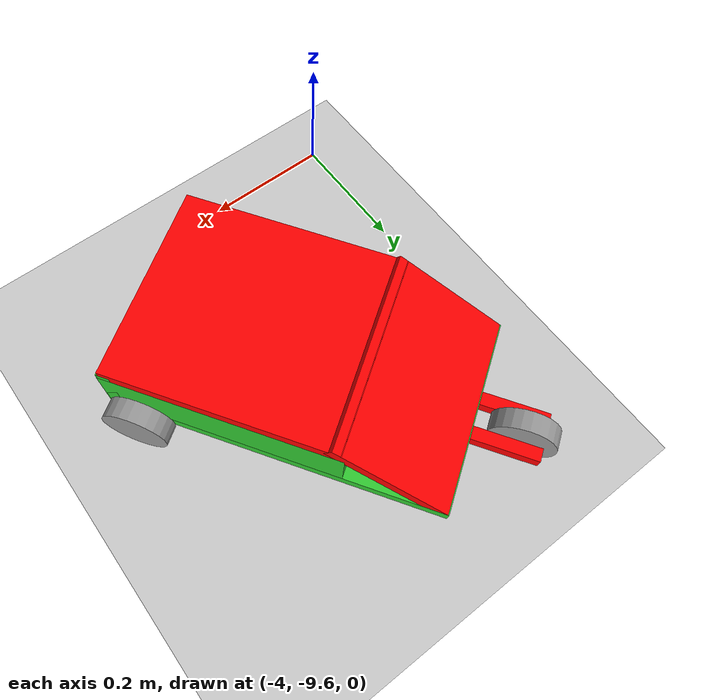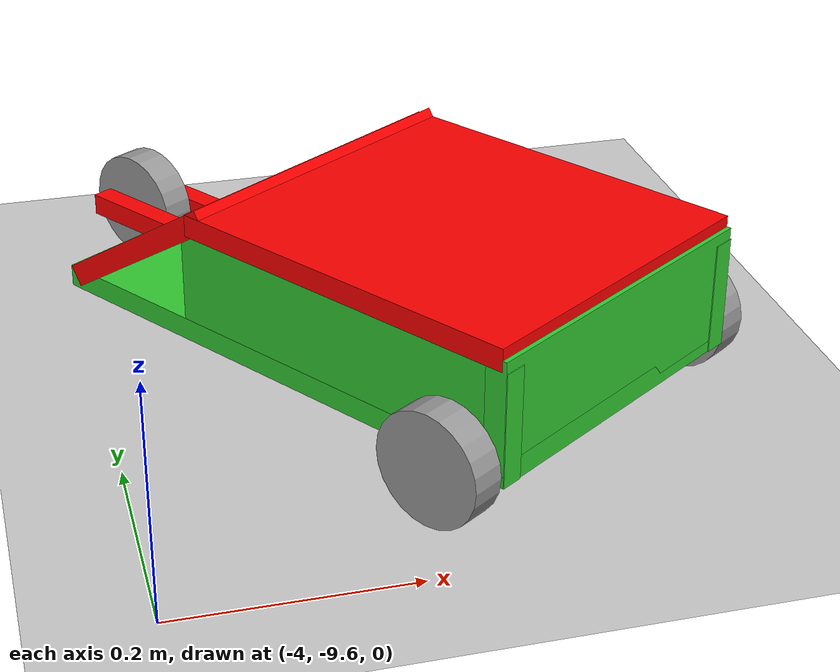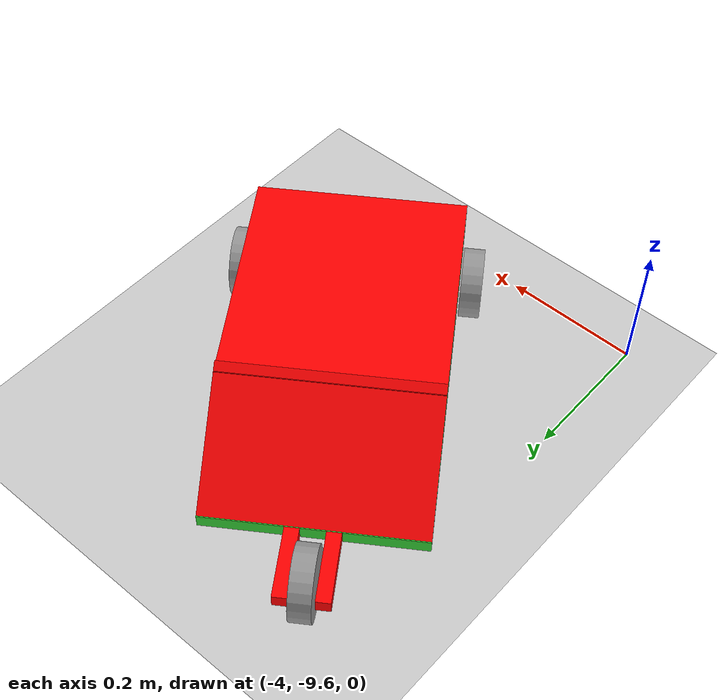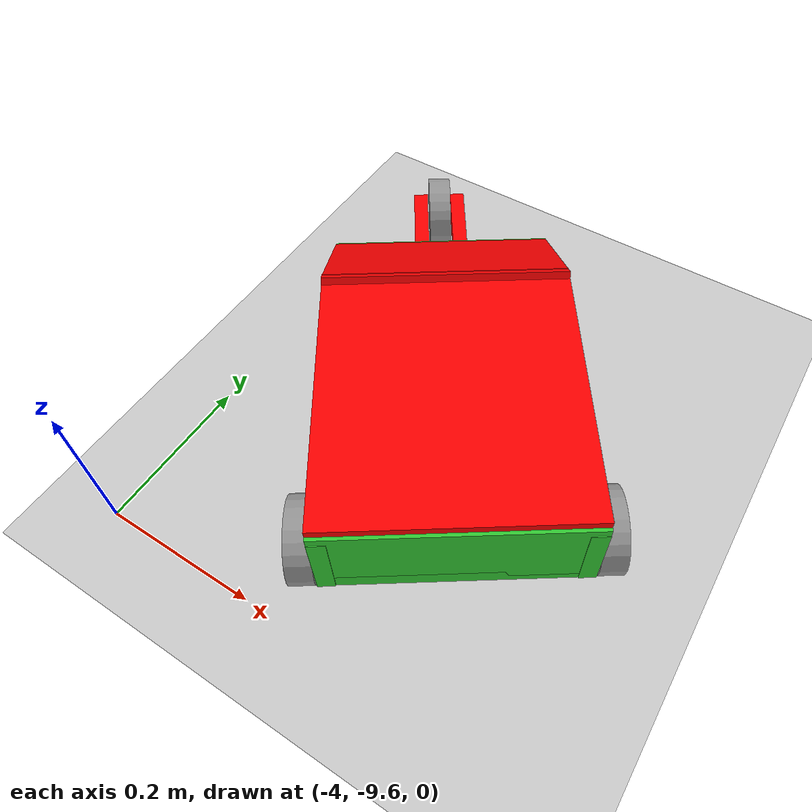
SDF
<sdf version="1.6">
 <world name="default">
  <model name="ground_plane">
   <static>1</static>
   <link name="link">
    <collision name="collision">
     <geometry><plane><normal>0 0 1</normal><size>100 100</size></plane></geometry>
     <surface><friction><ode><mu>100</mu><mu2>50</mu2></ode></friction></surface>
    </collision>
    <visual name="visual">
     <cast_shadows>0</cast_shadows>
     <geometry><plane><normal>0 0 1</normal><size>100 100</size></plane></geometry>
     <material>
      <script><uri>file://media/materials/scripts/gazebo.material</uri><name>Gazebo/Grey</name></script>
     </material>
    </visual>
   </link>
  </model>
  <model name="my_bot_2">
   <link name="link_12">
    <pose>-1e-06 0.16 0.055 1 -0 0</pose>
    <inertial>
     <mass>1</mass>
     <inertia>
      <ixx>0.166667</ixx>
      <ixy>0</ixy>
      <ixz>0</ixz>
      <iyy>0.166667</iyy>
      <iyz>0</iyz>
      <izz>0.166667</izz>
     </inertia>
    </inertial>
    <visual name="visual">
     <geometry><box><size>0.3 0.02 0.2</size></box></geometry>
     <material>
      <lighting>1</lighting>
      <script><uri>file://media/materials/scripts/gazebo.material</uri><name>Gazebo/Grey</name></script>
      <ambient>1 0 0 1</ambient>
      <diffuse>0.7 0.7 0.7 1</diffuse>
      <specular>0.01 0.01 0.01 1</specular>
      <emissive>0 0 0 1</emissive>
      <shader type="vertex"><normal_map>__default__</normal_map></shader>
     </material>
    </visual>
    <collision name="collision">
     <geometry><box><size>0.3 0.02 0.2</size></box></geometry>
     <surface>
      <friction>
       <ode><mu>1</mu><mu2>1</mu2><fdir1>0 0 0</fdir1><slip1>0</slip1><slip2>0</slip2></ode>
       <torsional>
        <coefficient>1</coefficient>
        <patch_radius>0</patch_radius>
        <surface_radius>0</surface_radius>
        <use_patch_radius>1</use_patch_radius>
        <ode><slip>0</slip></ode>
       </torsional>
      </friction>
      <bounce><restitution_coefficient>0</restitution_coefficient><threshold>1e+06</threshold></bounce>
      <contact>
       <collide_without_contact>0</collide_without_contact>
       <collide_without_contact_bitmask>1</collide_without_contact_bitmask>
       <collide_bitmask>1</collide_bitmask>
       <ode>
        <soft_cfm>0</soft_cfm>
        <soft_erp>0.2</soft_erp>
        <kp>1e+13</kp>
        <kd>1</kd>
        <max_vel>0.01</max_vel>
        <min_depth>0</min_depth>
       </ode>
       <bullet>
        <split_impulse>1</split_impulse>
        <split_impulse_penetration_threshold>-0.01</split_impulse_penetration_threshold>
        <soft_cfm>0</soft_cfm>
        <soft_erp>0.2</soft_erp>
        <kp>1e+13</kp>
        <kd>1</kd>
       </bullet>
      </contact>
     </surface>
    </collision>
   </link>
   <link name="link_5">
    <inertial>
     <mass>1</mass>
     <inertia>
      <ixx>0.166667</ixx>
      <ixy>0</ixy>
      <ixz>0</ixz>
      <iyy>0.166667</iyy>
      <iyz>0</iyz>
      <izz>0.166667</izz>
     </inertia>
    </inertial>
    <visual name="visual">
     <geometry><box><size>0.3 0.5 0.02</size></box></geometry>
     <material>
      <lighting>1</lighting>
      <script><uri>file://media/materials/scripts/gazebo.material</uri><name>Gazebo/Grey</name></script>
      <ambient>0.2 0.8 0.2 1</ambient>
      <diffuse>0.7 0.7 0.7 1</diffuse>
      <specular>0.01 0.01 0.01 1</specular>
      <emissive>0 0 0 1</emissive>
      <shader type="vertex"><normal_map>__default__</normal_map></shader>
     </material>
    </visual>
    <collision name="collision">
     <geometry><box><size>0.3 0.5 0.02</size></box></geometry>
     <surface>
      <friction>
       <ode><mu>1</mu><mu2>1</mu2><fdir1>0 0 0</fdir1><slip1>0</slip1><slip2>0</slip2></ode>
       <torsional>
        <coefficient>1</coefficient>
        <patch_radius>0</patch_radius>
        <surface_radius>0</surface_radius>
        <use_patch_radius>1</use_patch_radius>
        <ode><slip>0</slip></ode>
       </torsional>
      </friction>
      <bounce><restitution_coefficient>0</restitution_coefficient><threshold>1e+06</threshold></bounce>
      <contact>
       <collide_without_contact>0</collide_without_contact>
       <collide_without_contact_bitmask>1</collide_without_contact_bitmask>
       <collide_bitmask>1</collide_bitmask>
       <ode>
        <soft_cfm>0</soft_cfm>
        <soft_erp>0.2</soft_erp>
        <kp>1e+13</kp>
        <kd>1</kd>
        <max_vel>0.01</max_vel>
        <min_depth>0</min_depth>
       </ode>
       <bullet>
        <split_impulse>1</split_impulse>
        <split_impulse_penetration_threshold>-0.01</split_impulse_penetration_threshold>
        <soft_cfm>0</soft_cfm>
        <soft_erp>0.2</soft_erp>
        <kp>1e+13</kp>
        <kd>1</kd>
       </bullet>
      </contact>
     </surface>
    </collision>
   </link>
   <link name="link_5_clone">
    <pose>-0.139999 -0.076 0.04 3.12691 1.57079 3.12691</pose>
    <inertial>
     <mass>1</mass>
     <inertia>
      <ixx>0.166667</ixx>
      <ixy>0</ixy>
      <ixz>0</ixz>
      <iyy>0.166667</iyy>
      <iyz>0</iyz>
      <izz>0.166667</izz>
     </inertia>
    </inertial>
    <visual name="visual">
     <geometry><box><size>0.1 0.35 0.02</size></box></geometry>
     <material>
      <lighting>1</lighting>
      <script><uri>file://media/materials/scripts/gazebo.material</uri><name>Gazebo/Grey</name></script>
      <ambient>0.2 0.8 0.2 1</ambient>
      <diffuse>0.7 0.7 0.7 1</diffuse>
      <specular>0.01 0.01 0.01 1</specular>
      <emissive>0 0 0 1</emissive>
      <shader type="vertex"><normal_map>__default__</normal_map></shader>
     </material>
    </visual>
    <collision name="collision">
     <geometry><box><size>0.1 0.35 0.02</size></box></geometry>
     <surface>
      <friction>
       <ode><mu>1</mu><mu2>1</mu2><fdir1>0 0 0</fdir1><slip1>0</slip1><slip2>0</slip2></ode>
       <torsional>
        <coefficient>1</coefficient>
        <patch_radius>0</patch_radius>
        <surface_radius>0</surface_radius>
        <use_patch_radius>1</use_patch_radius>
        <ode><slip>0</slip></ode>
       </torsional>
      </friction>
      <bounce><restitution_coefficient>0</restitution_coefficient><threshold>1e+06</threshold></bounce>
      <contact>
       <collide_without_contact>0</collide_without_contact>
       <collide_without_contact_bitmask>1</collide_without_contact_bitmask>
       <collide_bitmask>1</collide_bitmask>
       <ode>
        <soft_cfm>0</soft_cfm>
        <soft_erp>0.2</soft_erp>
        <kp>1e+13</kp>
        <kd>1</kd>
        <max_vel>0.01</max_vel>
        <min_depth>0</min_depth>
       </ode>
       <bullet>
        <split_impulse>1</split_impulse>
        <split_impulse_penetration_threshold>-0.01</split_impulse_penetration_threshold>
        <soft_cfm>0</soft_cfm>
        <soft_erp>0.2</soft_erp>
        <kp>1e+13</kp>
        <kd>1</kd>
       </bullet>
      </contact>
     </surface>
    </collision>
   </link>
   <link name="link_5_clone_0">
    <pose>-1e-06 -0.076 0.1 0 -0 0</pose>
    <inertial>
     <mass>0.999845</mass>
     <inertia>
      <ixx>0.166615</ixx>
      <ixy>0</ixy>
      <ixz>0</ixz>
      <iyy>0.166641</iyy>
      <iyz>0</iyz>
      <izz>0.166615</izz>
     </inertia>
    </inertial>
    <visual name="visual">
     <geometry><box><size>0.3 0.339947 0.02</size></box></geometry>
     <material>
      <lighting>1</lighting>
      <script><uri>file://media/materials/scripts/gazebo.material</uri><name>Gazebo/Grey</name></script>
      <ambient>1 0 0 1</ambient>
      <diffuse>0.7 0.7 0.7 1</diffuse>
      <specular>0.01 0.01 0.01 1</specular>
      <emissive>0 0 0 1</emissive>
      <shader type="vertex"><normal_map>__default__</normal_map></shader>
     </material>
    </visual>
    <collision name="collision">
     <geometry><box><size>0.3 0.339947 0.02</size></box></geometry>
     <surface>
      <friction>
       <ode><mu>1</mu><mu2>1</mu2><fdir1>0 0 0</fdir1><slip1>0</slip1><slip2>0</slip2></ode>
       <torsional>
        <coefficient>1</coefficient>
        <patch_radius>0</patch_radius>
        <surface_radius>0</surface_radius>
        <use_patch_radius>1</use_patch_radius>
        <ode><slip>0</slip></ode>
       </torsional>
      </friction>
      <bounce><restitution_coefficient>0</restitution_coefficient><threshold>1e+06</threshold></bounce>
      <contact>
       <collide_without_contact>0</collide_without_contact>
       <collide_without_contact_bitmask>1</collide_without_contact_bitmask>
       <collide_bitmask>1</collide_bitmask>
       <ode>
        <soft_cfm>0</soft_cfm>
        <soft_erp>0.2</soft_erp>
        <kp>1e+13</kp>
        <kd>1</kd>
        <max_vel>0.01</max_vel>
        <min_depth>0</min_depth>
       </ode>
       <bullet>
        <split_impulse>1</split_impulse>
        <split_impulse_penetration_threshold>-0.01</split_impulse_penetration_threshold>
        <soft_cfm>0</soft_cfm>
        <soft_erp>0.2</soft_erp>
        <kp>1e+13</kp>
        <kd>1</kd>
       </bullet>
      </contact>
     </surface>
    </collision>
   </link>
   <link name="link_5_clone_clone">
    <pose>0.14 -0.076 0.04 3.12691 1.57079 3.12691</pose>
    <inertial>
     <mass>1</mass>
     <inertia>
      <ixx>0.166667</ixx>
      <ixy>0</ixy>
      <ixz>0</ixz>
      <iyy>0.166667</iyy>
      <iyz>0</iyz>
      <izz>0.166667</izz>
     </inertia>
    </inertial>
    <visual name="visual">
     <geometry><box><size>0.1 0.35 0.02</size></box></geometry>
     <material>
      <lighting>1</lighting>
      <script><uri>file://media/materials/scripts/gazebo.material</uri><name>Gazebo/Grey</name></script>
      <ambient>0.2 0.8 0.2 1</ambient>
      <diffuse>0.7 0.7 0.7 1</diffuse>
      <specular>0.01 0.01 0.01 1</specular>
      <emissive>0 0 0 1</emissive>
      <shader type="vertex"><normal_map>__default__</normal_map></shader>
     </material>
    </visual>
    <collision name="collision">
     <geometry><box><size>0.1 0.35 0.02</size></box></geometry>
     <surface>
      <friction>
       <ode><mu>1</mu><mu2>1</mu2><fdir1>0 0 0</fdir1><slip1>0</slip1><slip2>0</slip2></ode>
       <torsional>
        <coefficient>1</coefficient>
        <patch_radius>0</patch_radius>
        <surface_radius>0</surface_radius>
        <use_patch_radius>1</use_patch_radius>
        <ode><slip>0</slip></ode>
       </torsional>
      </friction>
      <bounce><restitution_coefficient>0</restitution_coefficient><threshold>1e+06</threshold></bounce>
      <contact>
       <collide_without_contact>0</collide_without_contact>
       <collide_without_contact_bitmask>1</collide_without_contact_bitmask>
       <collide_bitmask>1</collide_bitmask>
       <ode>
        <soft_cfm>0</soft_cfm>
        <soft_erp>0.2</soft_erp>
        <kp>1e+13</kp>
        <kd>1</kd>
        <max_vel>0.01</max_vel>
        <min_depth>0</min_depth>
       </ode>
       <bullet>
        <split_impulse>1</split_impulse>
        <split_impulse_penetration_threshold>-0.01</split_impulse_penetration_threshold>
        <soft_cfm>0</soft_cfm>
        <soft_erp>0.2</soft_erp>
        <kp>1e+13</kp>
        <kd>1</kd>
       </bullet>
      </contact>
     </surface>
    </collision>
   </link>
   <link name="link_5_clone_clone_clone">
    <pose>0 -0.239999 0.05 -1.53302 1.57079 0.037763</pose>
    <inertial>
     <mass>1</mass>
     <inertia>
      <ixx>0.166667</ixx>
      <ixy>0</ixy>
      <ixz>0</ixz>
      <iyy>0.166667</iyy>
      <iyz>0</iyz>
      <izz>0.166667</izz>
     </inertia>
     <pose>1.4 0.7 1 0 -0 0</pose>
    </inertial>
    <visual name="visual">
     <geometry><box><size>0.1 0.3 0.02</size></box></geometry>
     <material>
      <lighting>1</lighting>
      <script><uri>file://media/materials/scripts/gazebo.material</uri><name>Gazebo/Grey</name></script>
      <ambient>0.2 0.8 0.2 1</ambient>
      <diffuse>0.7 0.7 0.7 1</diffuse>
      <specular>0.01 0.01 0.01 1</specular>
      <emissive>0 0 0 1</emissive>
      <shader type="vertex"><normal_map>__default__</normal_map></shader>
     </material>
    </visual>
    <collision name="collision">
     <geometry><box><size>0.1 0.3 0.02</size></box></geometry>
     <surface>
      <friction>
       <ode><mu>1</mu><mu2>1</mu2><fdir1>0 0 0</fdir1><slip1>0</slip1><slip2>0</slip2></ode>
       <torsional>
        <coefficient>1</coefficient>
        <patch_radius>0</patch_radius>
        <surface_radius>0</surface_radius>
        <use_patch_radius>1</use_patch_radius>
        <ode><slip>0</slip></ode>
       </torsional>
      </friction>
      <bounce><restitution_coefficient>0</restitution_coefficient><threshold>1e+06</threshold></bounce>
      <contact>
       <collide_without_contact>0</collide_without_contact>
       <collide_without_contact_bitmask>1</collide_without_contact_bitmask>
       <collide_bitmask>1</collide_bitmask>
       <ode>
        <soft_cfm>0</soft_cfm>
        <soft_erp>0.2</soft_erp>
        <kp>1e+13</kp>
        <kd>1</kd>
        <max_vel>0.01</max_vel>
        <min_depth>0</min_depth>
       </ode>
       <bullet>
        <split_impulse>1</split_impulse>
        <split_impulse_penetration_threshold>-0.01</split_impulse_penetration_threshold>
        <soft_cfm>0</soft_cfm>
        <soft_erp>0.2</soft_erp>
        <kp>1e+13</kp>
        <kd>1</kd>
       </bullet>
      </contact>
     </surface>
    </collision>
   </link>
   <link name="link_6">
    <pose>-0.167 -0.2 -0 3.12691 1.57079 3.12691</pose>
    <inertial>
     <mass>1</mass>
     <inertia><ixx>0.145833</ixx><ixy>0</ixy><ixz>0</ixz><iyy>0.145833</iyy><iyz>0</iyz><izz>0.125</izz></inertia>
    </inertial>
    <visual name="visual">
     <geometry><cylinder><radius>0.05</radius><length>0.03</length></cylinder></geometry>
     <material>
      <lighting>1</lighting>
      <script><uri>file://media/materials/scripts/gazebo.material</uri><name>Gazebo/Grey</name></script>
      <ambient>0 0 0 1</ambient>
      <diffuse>0.7 0.7 0.7 1</diffuse>
      <specular>0.01 0.01 0.01 1</specular>
      <emissive>0 0 0 1</emissive>
      <shader type="vertex"><normal_map>__default__</normal_map></shader>
     </material>
    </visual>
    <collision name="collision">
     <geometry><cylinder><radius>0.05</radius><length>0.03</length></cylinder></geometry>
     <surface>
      <friction>
       <ode><mu>1</mu><mu2>1</mu2><fdir1>0 0 0</fdir1><slip1>0</slip1><slip2>0</slip2></ode>
       <torsional>
        <coefficient>1</coefficient>
        <patch_radius>0</patch_radius>
        <surface_radius>0</surface_radius>
        <use_patch_radius>1</use_patch_radius>
        <ode><slip>0</slip></ode>
       </torsional>
      </friction>
      <bounce><restitution_coefficient>0</restitution_coefficient><threshold>1e+06</threshold></bounce>
      <contact>
       <collide_without_contact>0</collide_without_contact>
       <collide_without_contact_bitmask>1</collide_without_contact_bitmask>
       <collide_bitmask>1</collide_bitmask>
       <ode>
        <soft_cfm>0</soft_cfm>
        <soft_erp>0.2</soft_erp>
        <kp>1e+13</kp>
        <kd>1</kd>
        <max_vel>0.01</max_vel>
        <min_depth>0</min_depth>
       </ode>
       <bullet>
        <split_impulse>1</split_impulse>
        <split_impulse_penetration_threshold>-0.01</split_impulse_penetration_threshold>
        <soft_cfm>0</soft_cfm>
        <soft_erp>0.2</soft_erp>
        <kp>1e+13</kp>
        <kd>1</kd>
       </bullet>
      </contact>
     </surface>
    </collision>
   </link>
   <link name="link_6_clone">
    <pose>0 0.32 0 3.08926 1.57079 3.08926</pose>
    <inertial>
     <mass>1</mass>
     <inertia><ixx>0.145833</ixx><ixy>0</ixy><ixz>0</ixz><iyy>0.145833</iyy><iyz>0</iyz><izz>0.125</izz></inertia>
    </inertial>
    <visual name="visual">
     <geometry><cylinder><radius>0.05</radius><length>0.03</length></cylinder></geometry>
     <material>
      <lighting>1</lighting>
      <script><uri>file://media/materials/scripts/gazebo.material</uri><name>Gazebo/Grey</name></script>
      <ambient>0 0 0 1</ambient>
      <diffuse>0.7 0.7 0.7 1</diffuse>
      <specular>0.01 0.01 0.01 1</specular>
      <emissive>0 0 0 1</emissive>
      <shader type="vertex"><normal_map>__default__</normal_map></shader>
     </material>
    </visual>
    <collision name="collision">
     <geometry><cylinder><radius>0.05</radius><length>0.03</length></cylinder></geometry>
     <surface>
      <friction>
       <ode><mu>1</mu><mu2>1</mu2><fdir1>0 0 0</fdir1><slip1>0</slip1><slip2>0</slip2></ode>
       <torsional>
        <coefficient>1</coefficient>
        <patch_radius>0</patch_radius>
        <surface_radius>0</surface_radius>
        <use_patch_radius>1</use_patch_radius>
        <ode><slip>0</slip></ode>
       </torsional>
      </friction>
      <bounce><restitution_coefficient>0</restitution_coefficient><threshold>1e+06</threshold></bounce>
      <contact>
       <collide_without_contact>0</collide_without_contact>
       <collide_without_contact_bitmask>1</collide_without_contact_bitmask>
       <collide_bitmask>1</collide_bitmask>
       <ode>
        <soft_cfm>0</soft_cfm>
        <soft_erp>0.2</soft_erp>
        <kp>1e+13</kp>
        <kd>1</kd>
        <max_vel>0.01</max_vel>
        <min_depth>0</min_depth>
       </ode>
       <bullet>
        <split_impulse>1</split_impulse>
        <split_impulse_penetration_threshold>-0.01</split_impulse_penetration_threshold>
        <soft_cfm>0</soft_cfm>
        <soft_erp>0.2</soft_erp>
        <kp>1e+13</kp>
        <kd>1</kd>
       </bullet>
      </contact>
     </surface>
    </collision>
   </link>
   <link name="link_6_clone_0">
    <pose>0.167001 -0.199998 -0 3.12691 1.57079 3.12691</pose>
    <inertial>
     <mass>1</mass>
     <inertia><ixx>0.145833</ixx><ixy>0</ixy><ixz>0</ixz><iyy>0.145833</iyy><iyz>0</iyz><izz>0.125</izz></inertia>
    </inertial>
    <visual name="visual">
     <geometry><cylinder><radius>0.05</radius><length>0.03</length></cylinder></geometry>
     <material>
      <lighting>1</lighting>
      <script><uri>file://media/materials/scripts/gazebo.material</uri><name>Gazebo/Grey</name></script>
      <ambient>0 0 0 1</ambient>
      <diffuse>0.7 0.7 0.7 1</diffuse>
      <specular>0.01 0.01 0.01 1</specular>
      <emissive>0 0 0 1</emissive>
      <shader type="vertex"><normal_map>__default__</normal_map></shader>
     </material>
    </visual>
    <collision name="collision">
     <geometry><cylinder><radius>0.05</radius><length>0.03</length></cylinder></geometry>
     <surface>
      <friction>
       <ode><mu>1</mu><mu2>1</mu2><fdir1>0 0 0</fdir1><slip1>0</slip1><slip2>0</slip2></ode>
       <torsional>
        <coefficient>1</coefficient>
        <patch_radius>0</patch_radius>
        <surface_radius>0</surface_radius>
        <use_patch_radius>1</use_patch_radius>
        <ode><slip>0</slip></ode>
       </torsional>
      </friction>
      <bounce><restitution_coefficient>0</restitution_coefficient><threshold>1e+06</threshold></bounce>
      <contact>
       <collide_without_contact>0</collide_without_contact>
       <collide_without_contact_bitmask>1</collide_without_contact_bitmask>
       <collide_bitmask>1</collide_bitmask>
       <ode>
        <soft_cfm>0</soft_cfm>
        <soft_erp>0.2</soft_erp>
        <kp>1e+13</kp>
        <kd>1</kd>
        <max_vel>0.01</max_vel>
        <min_depth>0</min_depth>
       </ode>
       <bullet>
        <split_impulse>1</split_impulse>
        <split_impulse_penetration_threshold>-0.01</split_impulse_penetration_threshold>
        <soft_cfm>0</soft_cfm>
        <soft_erp>0.2</soft_erp>
        <kp>1e+13</kp>
        <kd>1</kd>
       </bullet>
      </contact>
     </surface>
    </collision>
   </link>
   <link name="link_7">
    <pose>-0.026998 0.3 0 0 -0 0</pose>
    <inertial>
     <mass>1</mass>
     <inertia>
      <ixx>0.166667</ixx>
      <ixy>0</ixy>
      <ixz>0</ixz>
      <iyy>0.166667</iyy>
      <iyz>0</iyz>
      <izz>0.166667</izz>
     </inertia>
    </inertial>
    <visual name="visual">
     <geometry><box><size>0.02 0.1 0.02</size></box></geometry>
     <material>
      <lighting>1</lighting>
      <script><uri>file://media/materials/scripts/gazebo.material</uri><name>Gazebo/Grey</name></script>
      <ambient>1 0 0 1</ambient>
      <diffuse>0.7 0.7 0.7 1</diffuse>
      <specular>0.01 0.01 0.01 1</specular>
      <emissive>0 0 0 1</emissive>
      <shader type="vertex"><normal_map>__default__</normal_map></shader>
     </material>
    </visual>
    <collision name="collision">
     <geometry><box><size>0.02 0.1 0.02</size></box></geometry>
     <surface>
      <friction>
       <ode><mu>1</mu><mu2>1</mu2><fdir1>0 0 0</fdir1><slip1>0</slip1><slip2>0</slip2></ode>
       <torsional>
        <coefficient>1</coefficient>
        <patch_radius>0</patch_radius>
        <surface_radius>0</surface_radius>
        <use_patch_radius>1</use_patch_radius>
        <ode><slip>0</slip></ode>
       </torsional>
      </friction>
      <bounce><restitution_coefficient>0</restitution_coefficient><threshold>1e+06</threshold></bounce>
      <contact>
       <collide_without_contact>0</collide_without_contact>
       <collide_without_contact_bitmask>1</collide_without_contact_bitmask>
       <collide_bitmask>1</collide_bitmask>
       <ode>
        <soft_cfm>0</soft_cfm>
        <soft_erp>0.2</soft_erp>
        <kp>1e+13</kp>
        <kd>1</kd>
        <max_vel>0.01</max_vel>
        <min_depth>0</min_depth>
       </ode>
       <bullet>
        <split_impulse>1</split_impulse>
        <split_impulse_penetration_threshold>-0.01</split_impulse_penetration_threshold>
        <soft_cfm>0</soft_cfm>
        <soft_erp>0.2</soft_erp>
        <kp>1e+13</kp>
        <kd>1</kd>
       </bullet>
      </contact>
     </surface>
    </collision>
   </link>
   <link name="link_7_clone">
    <pose>0.027 0.3 -0 -3e-06 -2e-06 0.000736</pose>
    <inertial>
     <mass>1</mass>
     <inertia>
      <ixx>0.166667</ixx>
      <ixy>0</ixy>
      <ixz>0</ixz>
      <iyy>0.166667</iyy>
      <iyz>0</iyz>
      <izz>0.166667</izz>
     </inertia>
    </inertial>
    <visual name="visual">
     <geometry><box><size>0.02 0.1 0.02</size></box></geometry>
     <material>
      <lighting>1</lighting>
      <script><uri>file://media/materials/scripts/gazebo.material</uri><name>Gazebo/Grey</name></script>
      <ambient>1 0 0 1</ambient>
      <diffuse>0.7 0.7 0.7 1</diffuse>
      <specular>0.01 0.01 0.01 1</specular>
      <emissive>0 0 0 1</emissive>
      <shader type="vertex"><normal_map>__default__</normal_map></shader>
     </material>
    </visual>
    <collision name="collision">
     <geometry><box><size>0.02 0.1 0.02</size></box></geometry>
     <surface>
      <friction>
       <ode><mu>1</mu><mu2>1</mu2><fdir1>0 0 0</fdir1><slip1>0</slip1><slip2>0</slip2></ode>
       <torsional>
        <coefficient>1</coefficient>
        <patch_radius>0</patch_radius>
        <surface_radius>0</surface_radius>
        <use_patch_radius>1</use_patch_radius>
        <ode><slip>0</slip></ode>
       </torsional>
      </friction>
      <bounce><restitution_coefficient>0</restitution_coefficient><threshold>1e+06</threshold></bounce>
      <contact>
       <collide_without_contact>0</collide_without_contact>
       <collide_without_contact_bitmask>1</collide_without_contact_bitmask>
       <collide_bitmask>1</collide_bitmask>
       <ode>
        <soft_cfm>0</soft_cfm>
        <soft_erp>0.2</soft_erp>
        <kp>1e+13</kp>
        <kd>1</kd>
        <max_vel>0.01</max_vel>
        <min_depth>0</min_depth>
       </ode>
       <bullet>
        <split_impulse>1</split_impulse>
        <split_impulse_penetration_threshold>-0.01</split_impulse_penetration_threshold>
        <soft_cfm>0</soft_cfm>
        <soft_erp>0.2</soft_erp>
        <kp>1e+13</kp>
        <kd>1</kd>
       </bullet>
      </contact>
     </surface>
    </collision>
   </link>
   <joint name="link_5_JOINT_10" type="revolute">
    <parent>link_5</parent>
    <child>link_6</child>
    <axis>
     <xyz>0 0 1</xyz>
     <use_parent_model_frame>0</use_parent_model_frame>
     <limit>
      <lower>-1.79769e+308</lower>
      <upper>1.79769e+308</upper>
      <effort>-1</effort>
      <velocity>-1</velocity>
     </limit>
     <dynamics>
      <spring_reference>0</spring_reference>
      <spring_stiffness>0</spring_stiffness>
      <damping>0</damping>
      <friction>0</friction>
     </dynamics>
    </axis>
    <physics>
     <ode><limit><cfm>0</cfm><erp>0.2</erp></limit><suspension><cfm>0</cfm><erp>0.2</erp></suspension></ode>
    </physics>
   </joint>
   <joint name="link_5_JOINT_11" type="revolute">
    <parent>link_5</parent>
    <child>link_6_clone_0</child>
    <axis>
     <xyz>0 0 1</xyz>
     <use_parent_model_frame>0</use_parent_model_frame>
     <limit>
      <lower>-1.79769e+308</lower>
      <upper>1.79769e+308</upper>
      <effort>-1</effort>
      <velocity>-1</velocity>
     </limit>
     <dynamics>
      <spring_reference>0</spring_reference>
      <spring_stiffness>0</spring_stiffness>
      <damping>0</damping>
      <friction>0</friction>
     </dynamics>
    </axis>
    <physics>
     <ode><limit><cfm>0</cfm><erp>0.2</erp></limit><suspension><cfm>0</cfm><erp>0.2</erp></suspension></ode>
    </physics>
   </joint>
   <joint name="link_5_JOINT_2" type="fixed">
    <parent>link_5</parent>
    <child>link_7_clone</child>
    <physics>
     <ode><limit><cfm>0</cfm><erp>0.2</erp></limit><suspension><cfm>0</cfm><erp>0.2</erp></suspension></ode>
    </physics>
   </joint>
   <joint name="link_5_JOINT_3" type="fixed">
    <parent>link_5</parent>
    <child>link_7</child>
    <physics>
     <ode><limit><cfm>0</cfm><erp>0.2</erp></limit><suspension><cfm>0</cfm><erp>0.2</erp></suspension></ode>
    </physics>
   </joint>
   <joint name="link_5_JOINT_5" type="fixed">
    <parent>link_5</parent>
    <child>link_5_clone</child>
    <physics>
     <ode><limit><cfm>0</cfm><erp>0.2</erp></limit><suspension><cfm>0</cfm><erp>0.2</erp></suspension></ode>
    </physics>
   </joint>
   <joint name="link_5_JOINT_6" type="fixed">
    <parent>link_5</parent>
    <child>link_5_clone_0</child>
    <physics>
     <ode><limit><cfm>0</cfm><erp>0.2</erp></limit><suspension><cfm>0</cfm><erp>0.2</erp></suspension></ode>
    </physics>
   </joint>
   <joint name="link_5_JOINT_7" type="fixed">
    <parent>link_5</parent>
    <child>link_12</child>
    <physics>
     <ode><limit><cfm>0</cfm><erp>0.2</erp></limit><suspension><cfm>0</cfm><erp>0.2</erp></suspension></ode>
    </physics>
   </joint>
   <joint name="link_5_JOINT_8" type="fixed">
    <parent>link_5</parent>
    <child>link_5_clone_clone_clone</child>
    <physics>
     <ode><limit><cfm>0</cfm><erp>0.2</erp></limit><suspension><cfm>0</cfm><erp>0.2</erp></suspension></ode>
    </physics>
   </joint>
   <joint name="link_5_JOINT_9" type="fixed">
    <parent>link_5</parent>
    <child>link_5_clone_clone</child>
    <physics>
     <ode><limit><cfm>0</cfm><erp>0.2</erp></limit><suspension><cfm>0</cfm><erp>0.2</erp></suspension></ode>
    </physics>
   </joint>
   <joint name="link_7_JOINT_4" type="revolute">
    <parent>link_7</parent>
    <child>link_6_clone</child>
    <axis>
     <xyz>0 0 1</xyz>
     <use_parent_model_frame>0</use_parent_model_frame>
     <limit>
      <lower>-1.79769e+308</lower>
      <upper>1.79769e+308</upper>
      <effort>-1</effort>
      <velocity>-1</velocity>
     </limit>
     <dynamics>
      <spring_reference>0</spring_reference>
      <spring_stiffness>0</spring_stiffness>
      <damping>0</damping>
      <friction>0</friction>
     </dynamics>
    </axis>
    <physics>
     <ode><limit><cfm>0</cfm><erp>0.2</erp></limit><suspension><cfm>0</cfm><erp>0.2</erp></suspension></ode>
    </physics>
   </joint>
   <joint name="link_7_clone_JOINT_1" type="revolute">
    <parent>link_7_clone</parent>
    <child>link_6_clone</child>
    <axis>
     <xyz>0 0 1</xyz>
     <use_parent_model_frame>0</use_parent_model_frame>
     <limit>
      <lower>-1.79769e+308</lower>
      <upper>1.79769e+308</upper>
      <effort>-1</effort>
      <velocity>-1</velocity>
     </limit>
     <dynamics>
      <spring_reference>0</spring_reference>
      <spring_stiffness>0</spring_stiffness>
      <damping>0</damping>
      <friction>0</friction>
     </dynamics>
    </axis>
    <physics>
     <ode><limit><cfm>0</cfm><erp>0.2</erp></limit><suspension><cfm>0</cfm><erp>0.2</erp></suspension></ode>
    </physics>
   </joint>
   <static>0</static>
   <pose>-3.74427 -9.26386 0.05 -4e-06 -8e-06 0.592255</pose>
  </model>
 </world>
</sdf>
